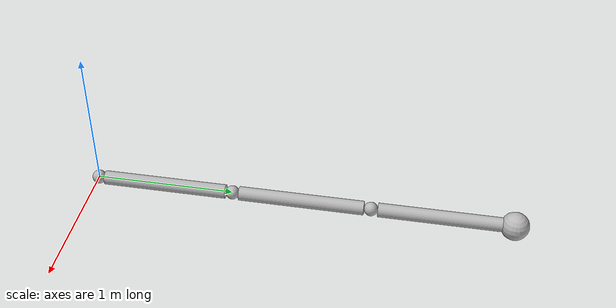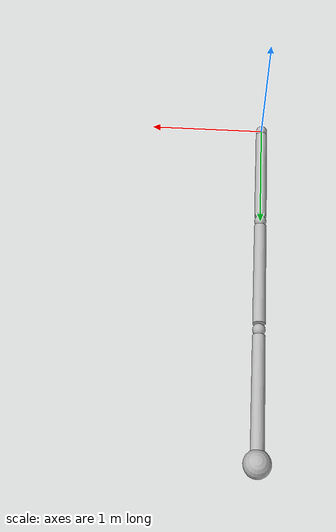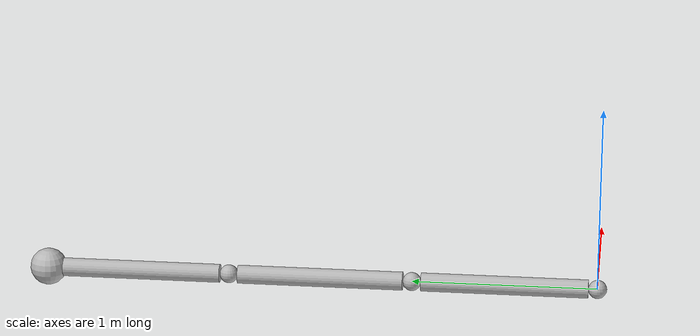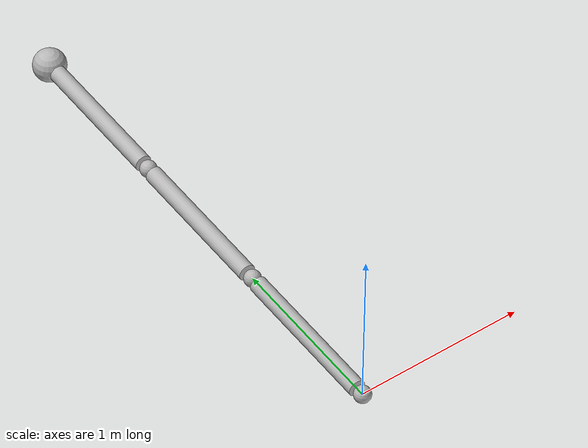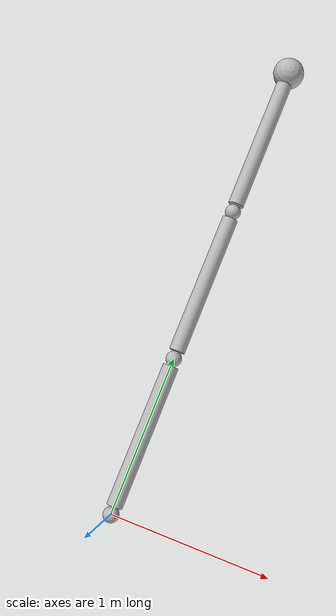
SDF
<sdf version='1.6'>
  <model name='three_link_arm'>
  <joint name='weld_link_0_to_world' type='fixed'>
    <child>link_0</child>
    <parent>world</parent>
  </joint>

  <link name="link_0">
  <pose> 0 0 0 0 0 0</pose>
  <visual name='ball'>
    <pose frame=''> 0 0 0 0 0 0 </pose>
    <geometry>
      <sphere>
       <radius>0.05</radius>
      </sphere>
    </geometry>
  </visual>
  </link>

  <!-- joint between link_0 and link_1 -->
  <joint name="joint_1" type="revolute">
    <child>link_1</child>
    <parent>link_0</parent>
    <pose> 0 -0.5 0 0 0 0 </pose>
    <axis>
      <xyz> 1 0 0 </xyz>
    </axis>
  </joint>

  <link name="link_1">
  <pose> 0 0.5 0 0 0 0</pose>
  <inertial>
      <mass>1</mass>
      <inertia>
        <ixx>0.0833</ixx>
        <ixy>0</ixy>
        <ixz>0</ixz>
        <iyy>0</iyy>
        <iyz>0</iyz>
        <izz>0.0833</izz>
      </inertia>
  </inertial>

  <visual name='cylinder'>
    <pose> 0 0.0 0 1.5708 0 0</pose>
    <geometry>
      <cylinder>
        <length>0.9</length>
        <radius>0.05</radius>
      </cylinder>
    </geometry>
  </visual>

  <visual name='ball'>
    <pose>0 0.5 0 0 0 0</pose>
    <geometry>
      <sphere>
       <radius>0.05</radius>
      </sphere>
    </geometry>
  </visual>
  </link>

  <!-- joint between link_1 and link_2 -->
  <joint name="joint_2" type="revolute">
    <child>link_2</child>
    <parent>link_1</parent>
    <pose frame=""> 0 -0.5 0 0 0 0</pose>
    <axis>
      <xyz> 1 0 0 </xyz>
    </axis>
  </joint>

  <link name="link_2">
  <pose> 0 1.5 0 0 0 0</pose>
  <inertial>
      <mass>1</mass>
      <inertia>
        <ixx>0.0833</ixx>
        <ixy>0</ixy>
        <ixz>0</ixz>
        <iyy>0</iyy>
        <iyz>0</iyz>
        <izz>0.0833</izz>
      </inertia>
  </inertial>

  <visual name='cylinder'>
    <pose> 0 0.0 0 1.5708 0 0</pose>
    <geometry>
      <cylinder>
        <length>0.9</length>
        <radius>0.05</radius>
      </cylinder>
    </geometry>
  </visual>

  <visual name='ball'>
    <pose frame=''>0 0.5 0 0 0 0</pose>
    <geometry>
      <sphere>
       <radius>0.05</radius>
      </sphere>
    </geometry>
  </visual>
  </link>

  <!-- joint between link_3 and link_2 -->
  <joint name="joint_3" type="revolute">
    <child>link_3</child>
    <parent>link_2</parent>
    <pose> 0 -0.5 0 0 0 0 </pose>
    <axis>
      <xyz> 1 0 0 </xyz>
    </axis>
  </joint>

  <link name="link_3">
    <pose> 0 2.5 0 0 0 0</pose>
    <inertial>
      <mass>1</mass>
      <inertia>
          <ixx>0.0833</ixx>
          <ixy>0</ixy>
          <ixz>0</ixz>
          <iyy>0</iyy>
          <iyz>0</iyz>
          <izz>0.0833</izz>
      </inertia>
    </inertial>

    <visual name='cylinder'>
      <pose> 0 0 0 1.5708 0 0</pose>
      <geometry>
        <cylinder>
          <length>0.9</length>
          <radius>0.05</radius>
        </cylinder>
      </geometry>
    </visual>

  </link>

  <!-- joint between link_3 and link_ee -->
  <joint name="joint_ee" type='fixed'>
    <child>link_ee</child>
    <parent>link_3</parent>
    <pose> 0 0.0 0 0 0 0 </pose>
  </joint>

  <link name="link_ee">
    <pose> 0 3.0 0 0 0 0</pose>

    <visual name='ball'>
      <pose>0 0.0 0 0 0 0</pose>
      <geometry>
        <sphere>
         <radius>0.1</radius>
        </sphere>
      </geometry>
    </visual>

    <collision name='collision_ee'>
      <pose>0 0.0 0 0 0 0</pose>
      <geometry>
        <sphere>
         <radius>0.1</radius>
        </sphere>
      </geometry>
    </collision>
  </link>

  </model>
</sdf>
